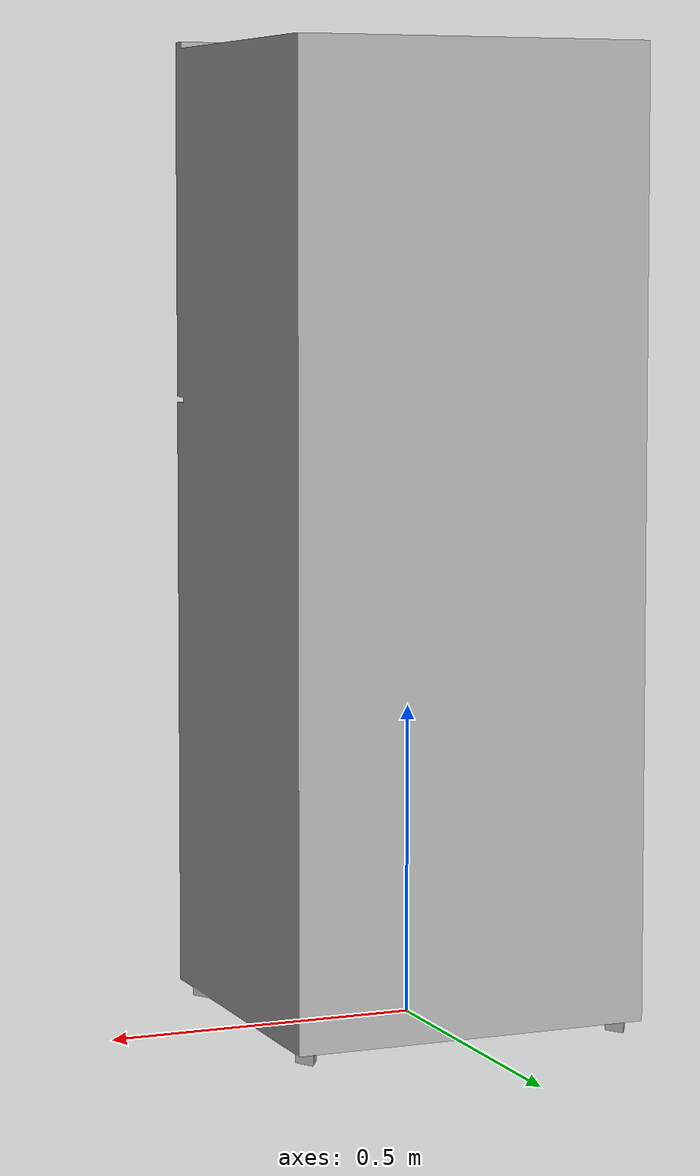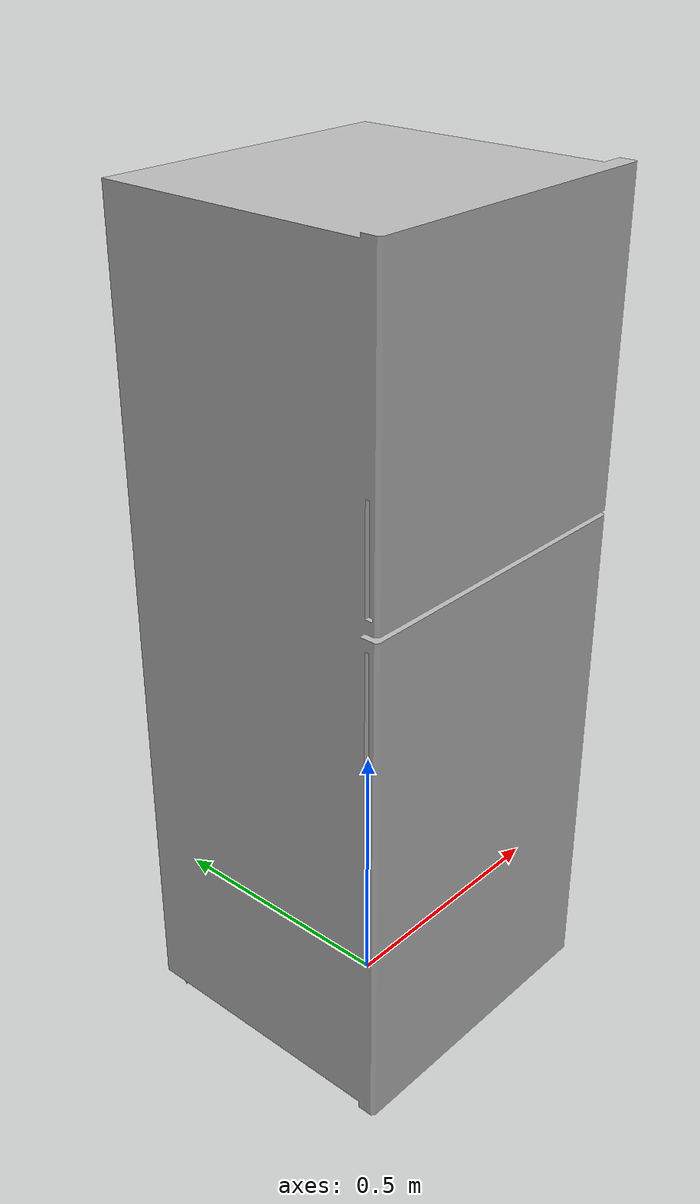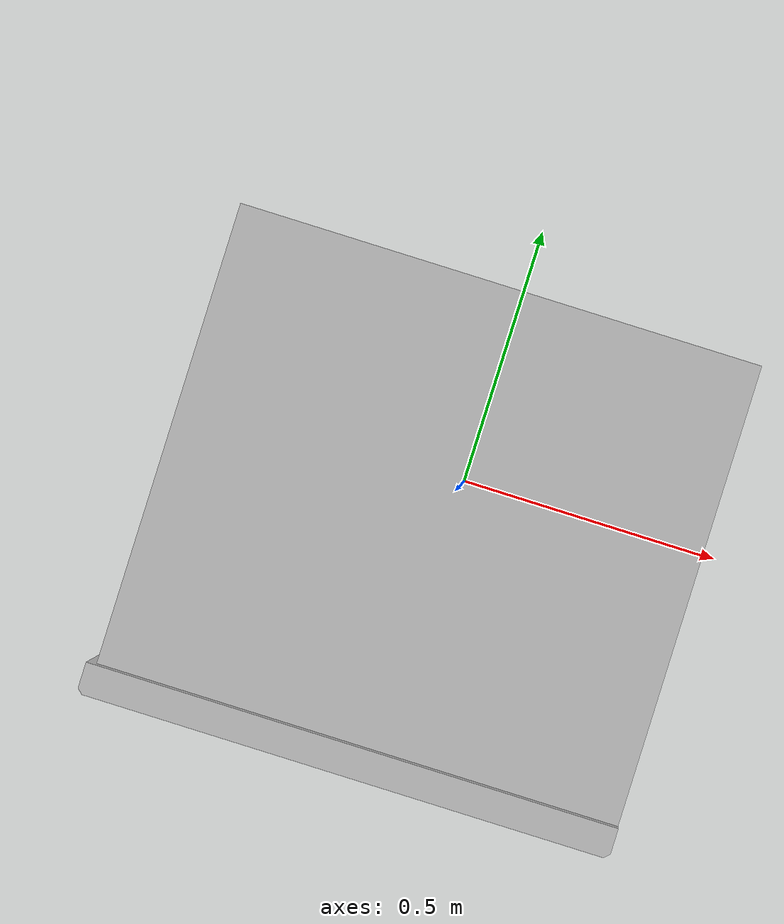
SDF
<?xml version='1.0' encoding='utf-8'?>
<sdf version="1.6">
  <model name="Fridge">
   <static>true</static>
    <link name="body">
      <pose>0 0 0 0 0 0</pose>

      <visual name="visual">
        <geometry>
          <mesh>
            <uri>model://Fridge/meshes/Fridge.obj</uri>
          </mesh>
        </geometry>
      </visual>

      <collision name="collision">
        <geometry>
          <mesh>
            <uri>model://Fridge/meshes/Fridge_Col.obj</uri>
          </mesh>
        </geometry>
      </collision>

    </link>
  </model>
</sdf>
